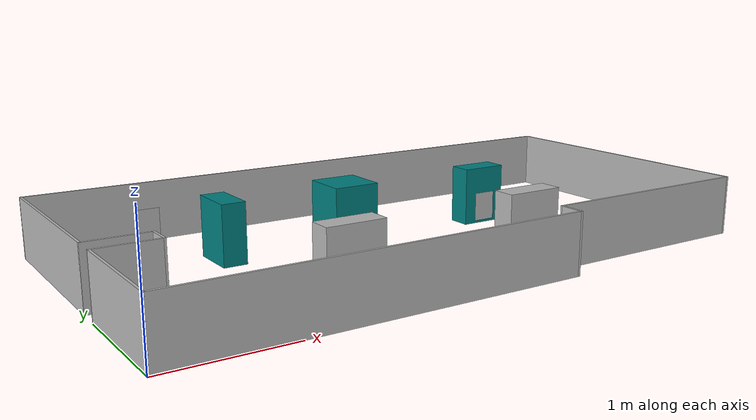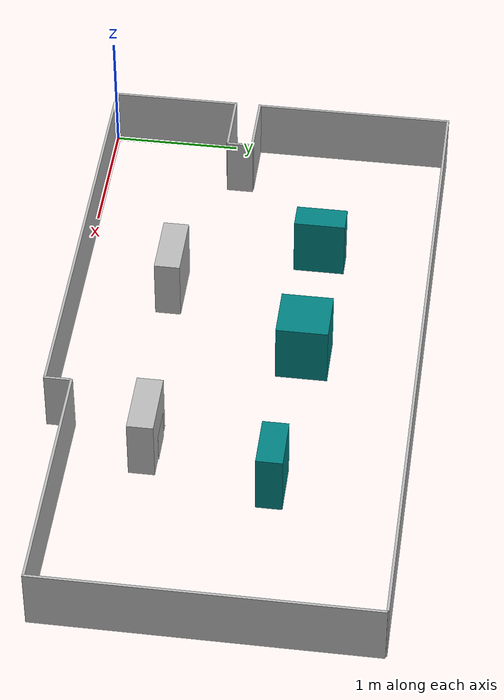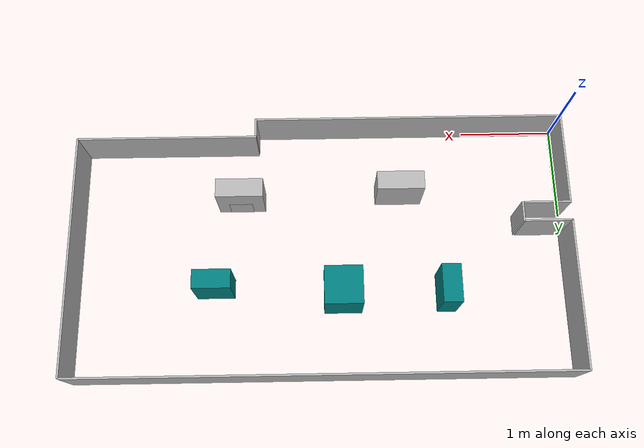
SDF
<?xml version="1.0" ?>
<sdf version="1.5">
  <model name="my_model">
    <static>true</static>

    <link name="wall1">
      <pose>1.65 0.01 0.25 0 0 0</pose>
      <visual name="visual">
        <geometry><box><size>3.3 0.02 0.5</size></box></geometry>
        <material>
          <script>
            <uri>model://ttk4192_world/materials/scripts/wall.material</uri>
            <name>MyTexture/WallMaterial</name>
          </script>
        </material>
      </visual>
      <collision name="collision">
        <geometry><box><size>3.3 0.02 0.5</size></box></geometry>
      </collision>
    </link>

    <link name="wall2">
      <pose>3.31 0.1 0.25 0 0 0</pose>
      <visual name="visual">
        <geometry><box><size>0.02 0.2 0.5</size></box></geometry>
        <material>
          <script>
            <uri>model://ttk4192_world/materials/scripts/wall.material</uri>
            <name>MyTexture/WallMaterial</name>
          </script>
        </material>
      </visual>
      <collision name="collision">
        <geometry><box><size>0.02 0.2 0.5</size></box></geometry>
      </collision>
    </link>

    <link name="wall3">
      <pose>4.26 0.21 0.25 0 0 0</pose>
      <visual name="visual">
        <geometry><box><size>1.91 0.02 0.5</size></box></geometry>
        <material>
          <script>
            <uri>model://ttk4192_world/materials/scripts/wall.material</uri>
            <name>MyTexture/WallMaterial</name>
          </script>
        </material>
      </visual>
      <collision name="collision">
        <geometry><box><size>1.91 0.02 0.5</size></box></geometry>
      </collision>
    </link>

    <link name="wall4">
      <pose>5.22 1.475 0.25 0 0 0</pose>
      <visual name="visual">
        <geometry><box><size>0.02 2.55 0.5</size></box></geometry>
        <material>
          <script>
            <uri>model://ttk4192_world/materials/scripts/wall.material</uri>
            <name>MyTexture/WallMaterial</name>
          </script>
        </material>
      </visual>
      <collision name="collision">
        <geometry><box><size>0.02 2.55 0.5</size></box></geometry>
      </collision>
    </link>

    <link name="wall5">
      <pose>2.605 2.75 0.25 0 0 0</pose>
      <visual name="visual">
        <geometry><box><size>5.21 0.02 0.5</size></box></geometry>
        <material>
          <script>
            <uri>model://ttk4192_world/materials/scripts/wall.material</uri>
            <name>MyTexture/WallMaterial</name>
          </script>
        </material>
      </visual>
      <collision name="collision">
        <geometry><box><size>5.21 0.02 0.5</size></box></geometry>
      </collision>

      <visual name="pump_decal_0">
        <pose>-1.6 -0.02 -0.1 1.5708 0 0</pose>
        <geometry>
          <plane>
            <size>0.2 0.25</size>
          </plane>
        </geometry>
        <material>
          <script>
            <uri>model://ttk4192_world/materials/scripts/pump.material</uri>
            <name>MyTexture/PumpMaterial</name>
          </script>
        </material>
      </visual>
    </link>

  <link name="wall6">
      <pose>0.01 1.975 0.25 0 0 0</pose>
      <visual name="visual">
        <geometry><box><size>0.02 1.55 0.5</size></box></geometry>
        <material>
          <script>
            <uri>model://ttk4192_world/materials/scripts/wall.material</uri>
            <name>MyTexture/WallMaterial</name>
          </script>
        </material>
      </visual>
      <collision name="collision">
        <geometry><box><size>0.02 1.55 0.5</size></box></geometry>
      </collision>
    </link>

    <link name="wall7">
      <pose>0.25 1.2 0.25 0 0 0</pose>
      <visual name="visual">
        <geometry><box><size>0.5 0.02 0.5</size></box></geometry>
        <material>
          <script>
            <uri>model://ttk4192_world/materials/scripts/wall.material</uri>
            <name>MyTexture/WallMaterial</name>
          </script>
        </material>
      </visual>
      <collision name="collision">
        <geometry><box><size>0.5 0.02 0.5</size></box></geometry>
      </collision>
    </link>

    <link name="wall8">
      <pose>0.51 1.1 0.25 0 0 0</pose>
      <visual name="visual">
        <geometry><box><size>0.02 0.21 0.5</size></box></geometry>
        <material>
          <script>
            <uri>model://ttk4192_world/materials/scripts/wall.material</uri>
            <name>MyTexture/WallMaterial</name>
          </script>
        </material>
      </visual>
      <collision name="collision">
        <geometry><box><size>0.02 0.21 0.5</size></box></geometry>
      </collision>
    </link>

    <link name="wall9">
      <pose>0.25 1 0.25 0 0 0</pose>
      <visual name="visual">
        <geometry><box><size>0.5 0.02 0.5</size></box></geometry>
        <material>
          <script>
            <uri>model://ttk4192_world/materials/scripts/wall.material</uri>
            <name>MyTexture/WallMaterial</name>
          </script>
        </material>
      </visual>
      <collision name="collision">
        <geometry><box><size>0.5 0.02 0.5</size></box></geometry>
      </collision>
    </link>

    <link name="wall10">
      <pose>0.01 0.5 0.25 0 0 0</pose>
      <visual name="visual">
        <geometry><box><size>0.02 1 0.5</size></box></geometry>
        <material>
          <script>
            <uri>model://ttk4192_world/materials/scripts/wall.material</uri>
            <name>MyTexture/WallMaterial</name>
          </script>
        </material>
      </visual>
      <collision name="collision">
        <geometry><box><size>0.02 1 0.5</size></box></geometry>
      </collision>
    </link>

    <link name="box1">
      <pose>1.3 1.85 0.25 0 0 0</pose>
      <visual name="visual">
        <geometry><box><size>0.2 0.4 0.5</size></box></geometry>
         <material>
          <ambient>0 0.5 0.5 1</ambient>
          <diffuse>0 0.5 0.5 1</diffuse>
          <specular>0.1 0.1 0.1 1</specular>
          <emissive>0 0 0 1</emissive>
        </material>
      </visual>
      <collision name="collision">
        <geometry><box><size>0.2 0.4 0.5</size></box></geometry>
      </collision>
    </link>

    <link name="box2">
      <pose>2.4 1.85 0.25 0 0 0</pose>
      <visual name="visual">
        <geometry><box><size>0.4 0.4 0.5</size></box></geometry>
        <material>
          <ambient>0 0.5 0.5 1</ambient>
          <diffuse>0 0.5 0.5 1</diffuse>
          <specular>0.1 0.1 0.1 1</specular>
          <emissive>0 0 0 1</emissive>
        </material>
      </visual>
      <collision name="collision">
        <geometry><box><size>0.4 0.4 0.5</size></box></geometry>
      </collision>
    </link>

    <link name="valve0">
      <pose>1.77 0.73 0.25 0 0 0</pose>
      <visual name="visual">
        <geometry><box><size>0.5 0.2 0.5</size></box></geometry>
      </visual>
      <collision name="collision">
        <geometry><box><size>0.5 0.2 0.5</size></box></geometry>
      </collision>

      <visual name="valve_decal_0">
        <pose>0 -0.11 -0.1 1.5708 0 0</pose>
        <geometry>
          <plane>
            <size>0.25 0.25</size>
          </plane>
        </geometry>
        <material>
          <script>
            <uri>model://ttk4192_world/materials/scripts/valve.material</uri>
            <name>MyTexture/ValveMaterial</name>
          </script>
        </material>
      </visual>
    </link>

    <link name="valve1">
      <pose>3.48 0.79 0.25 0 0 0</pose>
      <visual name="visual">
        <geometry><box><size>0.5 0.2 0.5</size></box></geometry>
      </visual>
      <collision name="collision">
        <geometry><box><size>0.5 0.2 0.5</size></box></geometry>
      </collision>

      <visual name="valve_decal_1">
        <pose>0 0.11 -0.1 1.5708 0 3.1415</pose>
        <geometry>
          <plane>
            <size>0.25 0.25</size>
          </plane>
        </geometry>
        <material>
          <script>
            <uri>model://ttk4192_world/materials/scripts/valve.material</uri>
            <name>MyTexture/ValveMaterial</name>
          </script>
        </material>
      </visual>

    </link>

    <link name="pump1">
      <pose>3.75 1.77 0.25 0 0 0</pose>

      <visual name="pump_body">
        <geometry>
          <box><size>0.4 0.2 0.5</size></box>
        </geometry>
        <material>
          <ambient>0 0.5 0.5 1</ambient>
          <diffuse>0 0.5 0.5 1</diffuse>
          <specular>0.1 0.1 0.1 1</specular>
          <emissive>0 0 0 1</emissive>
        </material>
      </visual>

      <collision name="pump_collision">
        <geometry>
          <box><size>0.4 0.2 0.5</size></box>
        </geometry>
      </collision>

      <visual name="pump_decal_1">
        <pose>0 -0.11 -0.1 1.5708 0 0</pose>
        <geometry>
          <plane>
            <size>0.2 0.25</size>
          </plane>
        </geometry>
        <material>
          <script>
            <uri>model://ttk4192_world/materials/scripts/pump.material</uri>
            <name>MyTexture/PumpMaterial</name>
          </script>
        </material>
      </visual>

    </link>

  </model>
</sdf>
